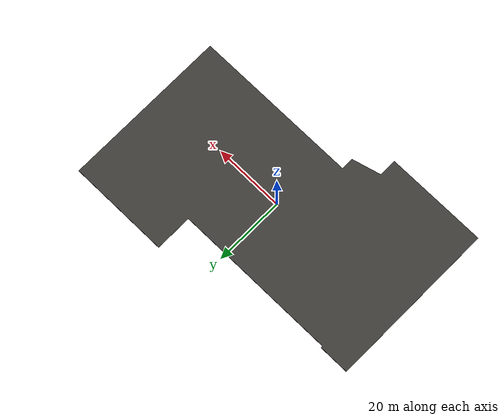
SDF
<?xml version='1.0'?>
<sdf version='1.5'>
  <model name='fourth_floor_floor'>
    <link name='link_3'>
      <pose frame=''>0.0 0.0 0.0 0 -0 0</pose>

      <visual name='visual'>
        <pose frame=''>0 0 0 0 -0 0</pose>
        <geometry>
          <mesh>
            <uri>model://fourth_floor_floor/meshes/fourth_floor_floor.stl</uri>
            <scale>1 1 1</scale>
          </mesh>
        </geometry>
        <material>
            <ambient>0.226563 0.21875 0.207031 1</ambient>
            <diffuse>0.226563 0.21875 0.207031 1</diffuse>
            <specular>0.1 0.1 0.1 1</specular>
            <emissive>0 0 0 0</emissive>
        </material>
        <cast_shadows>1</cast_shadows>
        <transparency>0</transparency>
      </visual>
    </link>
    <static>1</static>
    <allow_auto_disable>1</allow_auto_disable>
  </model>
</sdf>
